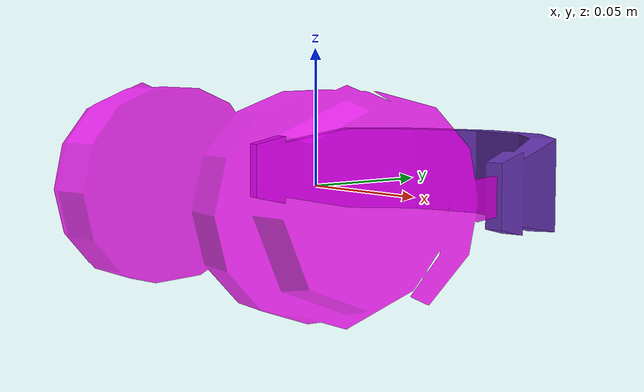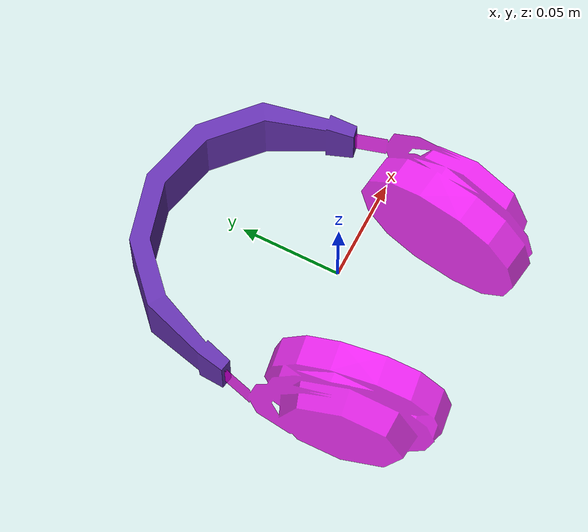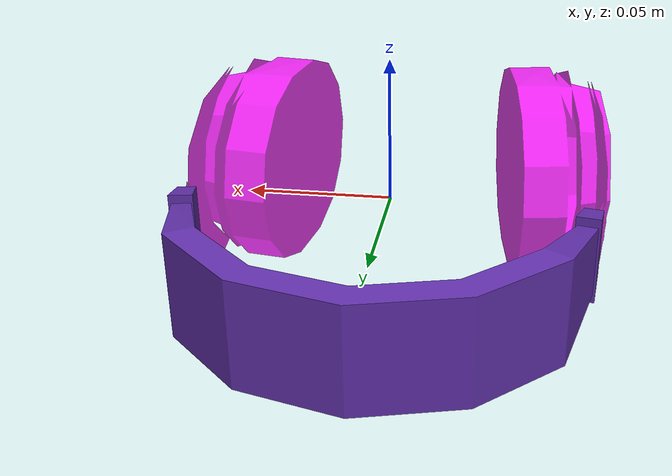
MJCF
<?xml version="1.0" encoding="utf-8"?>
<mujoco model="top_watertight_tiny">

  <asset>

    <mesh file="top_watertight_tiny.obj"/>

    <mesh file="top_watertight_tiny_collision_0.obj"/>

    <mesh file="top_watertight_tiny_collision_1.obj"/>

    <mesh file="top_watertight_tiny_collision_2.obj"/>

    <mesh file="top_watertight_tiny_collision_3.obj"/>

    <mesh file="top_watertight_tiny_collision_4.obj"/>

    <mesh file="top_watertight_tiny_collision_5.obj"/>

    <mesh file="bottom_watertight_tiny.obj"/>

    <mesh file="bottom_watertight_tiny_collision_0.obj"/>

    <mesh file="bottom_watertight_tiny_collision_1.obj"/>

    <mesh file="bottom_watertight_tiny_collision_2.obj"/>

    <mesh file="bottom_watertight_tiny_collision_3.obj"/>

    <mesh file="bottom_watertight_tiny_collision_4.obj"/>

    <mesh file="bottom_watertight_tiny_collision_5.obj"/>

    <mesh file="bottom_watertight_tiny_collision_6.obj"/>

    <mesh file="bottom_watertight_tiny_collision_7.obj"/>

    <mesh file="bottom_watertight_tiny_collision_8.obj"/>

    <mesh file="bottom_watertight_tiny_collision_9.obj"/>

    <mesh file="bottom_watertight_tiny_collision_10.obj"/>

    <mesh file="bottom_watertight_tiny_collision_11.obj"/>

    <mesh file="bottom_watertight_tiny_collision_12.obj"/>

    <mesh file="bottom_watertight_tiny_collision_13.obj"/>

    <mesh file="bottom_watertight_tiny_collision_14.obj"/>

    <mesh file="bottom_watertight_tiny_collision_15.obj"/>

    <mesh file="bottom_watertight_tiny_collision_16.obj"/>

    <mesh file="bottom_watertight_tiny_collision_17.obj"/>

    <mesh file="bottom_watertight_tiny_collision_18.obj"/>

    <mesh file="bottom_watertight_tiny_collision_19.obj"/>

    <mesh file="bottom_watertight_tiny_collision_20.obj"/>

    <mesh file="bottom_watertight_tiny_collision_21.obj"/>

    <mesh file="bottom_watertight_tiny_collision_22.obj"/>

    <mesh file="bottom_watertight_tiny_collision_23.obj"/>

    <mesh file="bottom_watertight_tiny_collision_24.obj"/>

    <mesh file="bottom_watertight_tiny_collision_25.obj"/>

    <mesh file="bottom_watertight_tiny_collision_26.obj"/>

    <mesh file="bottom_watertight_tiny_collision_27.obj"/>

    <mesh file="bottom_watertight_tiny_collision_28.obj"/>

    <mesh file="bottom_watertight_tiny_collision_29.obj"/>

    <mesh file="bottom_watertight_tiny_collision_30.obj"/>

    <mesh file="bottom_watertight_tiny_collision_31.obj"/>

    <mesh file="bottom_watertight_tiny_collision_32.obj"/>

    <mesh file="bottom_watertight_tiny_collision_33.obj"/>

    <mesh file="bottom_watertight_tiny_collision_34.obj"/>

    <mesh file="bottom_watertight_tiny_collision_35.obj"/>

    <mesh file="bottom_watertight_tiny_collision_36.obj"/>

    <mesh file="bottom_watertight_tiny_collision_37.obj"/>

    <mesh file="bottom_watertight_tiny_collision_38.obj"/>

    <mesh file="bottom_watertight_tiny_collision_39.obj"/>

    <mesh file="bottom_watertight_tiny_collision_40.obj"/>

    <mesh file="bottom_watertight_tiny_collision_41.obj"/>

    <mesh file="bottom_watertight_tiny_collision_42.obj"/>

    <mesh file="bottom_watertight_tiny_collision_43.obj"/>

    <mesh file="bottom_watertight_tiny_collision_44.obj"/>

    <mesh file="bottom_watertight_tiny_collision_45.obj"/>

    <mesh file="bottom_watertight_tiny_collision_46.obj"/>

    <mesh file="bottom_watertight_tiny_collision_47.obj"/>

    <mesh file="bottom_watertight_tiny_collision_48.obj"/>

    <mesh file="bottom_watertight_tiny_collision_49.obj"/>

    <mesh file="bottom_watertight_tiny_collision_50.obj"/>

    <mesh file="bottom_watertight_tiny_collision_51.obj"/>

    <mesh file="bottom_watertight_tiny_collision_52.obj"/>

    <mesh file="bottom_watertight_tiny_collision_53.obj"/>

    <mesh file="bottom_watertight_tiny_collision_54.obj"/>

    <mesh file="bottom_watertight_tiny_collision_55.obj"/>

    <mesh file="bottom_watertight_tiny_collision_56.obj"/>

    <mesh file="bottom_watertight_tiny_collision_57.obj"/>

    <mesh file="bottom_watertight_tiny_collision_58.obj"/>

    <mesh file="bottom_watertight_tiny_collision_59.obj"/>

    <mesh file="bottom_watertight_tiny_collision_60.obj"/>

    <mesh file="bottom_watertight_tiny_collision_61.obj"/>

    <mesh file="bottom_watertight_tiny_collision_62.obj"/>

    <mesh file="bottom_watertight_tiny_collision_63.obj"/>

    <mesh file="bottom_watertight_tiny_collision_64.obj"/>

    <mesh file="bottom_watertight_tiny_collision_65.obj"/>

    <mesh file="bottom_watertight_tiny_collision_66.obj"/>

    <mesh file="bottom_watertight_tiny_collision_67.obj"/>

    <mesh file="bottom_watertight_tiny_collision_68.obj"/>

    <mesh file="bottom_watertight_tiny_collision_69.obj"/>

    <mesh file="bottom_watertight_tiny_collision_70.obj"/>

    <mesh file="bottom_watertight_tiny_collision_71.obj"/>

    <mesh file="bottom_watertight_tiny_collision_72.obj"/>

    <mesh file="bottom_watertight_tiny_collision_73.obj"/>

    <mesh file="bottom_watertight_tiny_collision_74.obj"/>

    <mesh file="bottom_watertight_tiny_collision_75.obj"/>

    <mesh file="bottom_watertight_tiny_collision_76.obj"/>

    <mesh file="bottom_watertight_tiny_collision_77.obj"/>

    <mesh file="bottom_watertight_tiny_collision_78.obj"/>

    <mesh file="bottom_watertight_tiny_collision_79.obj"/>

    <mesh file="bottom_watertight_tiny_collision_80.obj"/>

    <mesh file="bottom_watertight_tiny_collision_81.obj"/>

    <mesh file="bottom_watertight_tiny_collision_82.obj"/>

    <mesh file="bottom_watertight_tiny_collision_83.obj"/>

    <mesh file="bottom_watertight_tiny_collision_84.obj"/>

    <mesh file="bottom_watertight_tiny_collision_85.obj"/>

    <mesh file="bottom_watertight_tiny_collision_86.obj"/>

    <mesh file="bottom_watertight_tiny_collision_87.obj"/>

    <mesh file="bottom_watertight_tiny_collision_88.obj"/>

    <mesh file="bottom_watertight_tiny_collision_89.obj"/>

    <mesh file="bottom_watertight_tiny_collision_90.obj"/>

    <mesh file="bottom_watertight_tiny_collision_91.obj"/>

    <mesh file="bottom_watertight_tiny_collision_92.obj"/>

    <mesh file="bottom_watertight_tiny_collision_93.obj"/>

    <mesh file="bottom_watertight_tiny_collision_94.obj"/>

    <mesh file="bottom_watertight_tiny_collision_95.obj"/>

    <mesh file="bottom_watertight_tiny_collision_96.obj"/>

    <mesh file="bottom_watertight_tiny_collision_97.obj"/>

    <mesh file="bottom_watertight_tiny_collision_98.obj"/>

    <mesh file="bottom_watertight_tiny_collision_99.obj"/>

    <mesh file="bottom_watertight_tiny_collision_100.obj"/>

    <mesh file="bottom_watertight_tiny_collision_101.obj"/>

    <mesh file="bottom_watertight_tiny_collision_102.obj"/>

    <mesh file="bottom_watertight_tiny_collision_103.obj"/>

    <mesh file="bottom_watertight_tiny_collision_104.obj"/>

    <mesh file="bottom_watertight_tiny_collision_105.obj"/>

    <mesh file="bottom_watertight_tiny_collision_106.obj"/>

    <mesh file="bottom_watertight_tiny_collision_107.obj"/>

    <mesh file="bottom_watertight_tiny_collision_108.obj"/>

    <mesh file="bottom_watertight_tiny_collision_109.obj"/>

    <mesh file="bottom_watertight_tiny_collision_110.obj"/>

    <mesh file="bottom_watertight_tiny_collision_111.obj"/>

    <mesh file="bottom_watertight_tiny_collision_112.obj"/>

    <mesh file="bottom_watertight_tiny_collision_113.obj"/>

    <mesh file="bottom_watertight_tiny_collision_114.obj"/>

    <mesh file="bottom_watertight_tiny_collision_115.obj"/>

    <mesh file="bottom_watertight_tiny_collision_116.obj"/>

    <mesh file="bottom_watertight_tiny_collision_117.obj"/>

    <mesh file="bottom_watertight_tiny_collision_118.obj"/>

  </asset>

  <worldbody>

    <body name="top_watertight_tiny">

      <freejoint/>

      <geom mesh="top_watertight_tiny" group="2" type="mesh" rgba="0.4 0.2 0.7 1" contype="0" conaffinity="0" solimp="0.90 0.95 0.001" solref="0.02 1.0" density="100" friction="0.95 0.4 0.3"/>

      <geom mesh="top_watertight_tiny_collision_0" rgba="0.9953216689823152 0.5612878978575979 0.4330687415905615 1" group="3" type="mesh" solimp="0.90 0.95 0.001" solref="0.02 1.0" density="100" friction="0.95 0.4 0.3"/>

      <geom mesh="top_watertight_tiny_collision_1" rgba="0.16890570363622637 0.4743819673370072 0.7035933103140639 1" group="3" type="mesh" solimp="0.90 0.95 0.001" solref="0.02 1.0" density="100" friction="0.95 0.4 0.3"/>

      <geom mesh="top_watertight_tiny_collision_2" rgba="0.050984244013493996 0.34365890097586105 0.2049231459749007 1" group="3" type="mesh" solimp="0.90 0.95 0.001" solref="0.02 1.0" density="100" friction="0.95 0.4 0.3"/>

      <geom mesh="top_watertight_tiny_collision_3" rgba="0.5859334586850894 0.43324620159177396 0.7777749571624712 1" group="3" type="mesh" solimp="0.90 0.95 0.001" solref="0.02 1.0" density="100" friction="0.95 0.4 0.3"/>

      <geom mesh="top_watertight_tiny_collision_4" rgba="0.05297137474321467 0.5279955368687115 0.4125917636921278 1" group="3" type="mesh" solimp="0.90 0.95 0.001" solref="0.02 1.0" density="100" friction="0.95 0.4 0.3"/>

      <geom mesh="top_watertight_tiny_collision_5" rgba="0.28188375648977737 0.9775295154427945 2.1983405617764795e-05 1" group="3" type="mesh" solimp="0.90 0.95 0.001" solref="0.02 1.0" density="100" friction="0.95 0.4 0.3"/>

      <body name="bottom_watertight_tiny">

        <geom mesh="bottom_watertight_tiny" group="2" type="mesh" rgba="1 0 1 0.8" contype="0" conaffinity="0" solimp="0.90 0.95 0.001" solref="0.02 1.0" density="100" friction="0.95 0.4 0.3"/>

        <geom mesh="bottom_watertight_tiny_collision_0" rgba="0.25539201174926796 0.7792067627792995 0.4295510790214633 1" group="3" type="mesh" solimp="0.90 0.95 0.001" solref="0.02 1.0" density="100" friction="0.95 0.4 0.3"/>

        <geom mesh="bottom_watertight_tiny_collision_1" rgba="0.04451256020075833 0.29560538469228725 0.4395954780102096 1" group="3" type="mesh" solimp="0.90 0.95 0.001" solref="0.02 1.0" density="100" friction="0.95 0.4 0.3"/>

        <geom mesh="bottom_watertight_tiny_collision_2" rgba="0.2891335623174973 0.5282494574609454 0.24016633511732366 1" group="3" type="mesh" solimp="0.90 0.95 0.001" solref="0.02 1.0" density="100" friction="0.95 0.4 0.3"/>

        <geom mesh="bottom_watertight_tiny_collision_3" rgba="0.5503729312580417 0.2547904474771432 0.06884932173106428 1" group="3" type="mesh" solimp="0.90 0.95 0.001" solref="0.02 1.0" density="100" friction="0.95 0.4 0.3"/>

        <geom mesh="bottom_watertight_tiny_collision_4" rgba="0.5799908127836447 0.9541637603357953 0.24615028252230975 1" group="3" type="mesh" solimp="0.90 0.95 0.001" solref="0.02 1.0" density="100" friction="0.95 0.4 0.3"/>

        <geom mesh="bottom_watertight_tiny_collision_5" rgba="0.11606272672814877 0.43256944273370446 0.5296161238317297 1" group="3" type="mesh" solimp="0.90 0.95 0.001" solref="0.02 1.0" density="100" friction="0.95 0.4 0.3"/>

        <geom mesh="bottom_watertight_tiny_collision_6" rgba="0.8741560948216408 0.07260614400804155 0.25765148047397934 1" group="3" type="mesh" solimp="0.90 0.95 0.001" solref="0.02 1.0" density="100" friction="0.95 0.4 0.3"/>

        <geom mesh="bottom_watertight_tiny_collision_7" rgba="0.07729918252561951 0.7401862419772689 0.9407622546401893 1" group="3" type="mesh" solimp="0.90 0.95 0.001" solref="0.02 1.0" density="100" friction="0.95 0.4 0.3"/>

        <geom mesh="bottom_watertight_tiny_collision_8" rgba="0.2092318226043931 0.8246840343857599 0.9634756348934421 1" group="3" type="mesh" solimp="0.90 0.95 0.001" solref="0.02 1.0" density="100" friction="0.95 0.4 0.3"/>

        <geom mesh="bottom_watertight_tiny_collision_9" rgba="0.18732822250389924 0.6751610833874379 0.9906925948984381 1" group="3" type="mesh" solimp="0.90 0.95 0.001" solref="0.02 1.0" density="100" friction="0.95 0.4 0.3"/>

        <geom mesh="bottom_watertight_tiny_collision_10" rgba="0.3983840127412678 0.2553120594388387 0.8813608061117473 1" group="3" type="mesh" solimp="0.90 0.95 0.001" solref="0.02 1.0" density="100" friction="0.95 0.4 0.3"/>

        <geom mesh="bottom_watertight_tiny_collision_11" rgba="0.807532696070348 0.7061347679224464 0.8181035233287868 1" group="3" type="mesh" solimp="0.90 0.95 0.001" solref="0.02 1.0" density="100" friction="0.95 0.4 0.3"/>

        <geom mesh="bottom_watertight_tiny_collision_12" rgba="0.47488860745033556 0.10606731102801936 0.4933657794920808 1" group="3" type="mesh" solimp="0.90 0.95 0.001" solref="0.02 1.0" density="100" friction="0.95 0.4 0.3"/>

        <geom mesh="bottom_watertight_tiny_collision_13" rgba="0.6326820151155642 0.7741115561829 0.4608216205561544 1" group="3" type="mesh" solimp="0.90 0.95 0.001" solref="0.02 1.0" density="100" friction="0.95 0.4 0.3"/>

        <geom mesh="bottom_watertight_tiny_collision_14" rgba="0.3541363196700067 0.5960844142198681 0.5022495284564557 1" group="3" type="mesh" solimp="0.90 0.95 0.001" solref="0.02 1.0" density="100" friction="0.95 0.4 0.3"/>

        <geom mesh="bottom_watertight_tiny_collision_15" rgba="0.6516494246518133 0.27750664979820405 0.1797517247039958 1" group="3" type="mesh" solimp="0.90 0.95 0.001" solref="0.02 1.0" density="100" friction="0.95 0.4 0.3"/>

        <geom mesh="bottom_watertight_tiny_collision_16" rgba="0.4238545934123765 0.8567989113554815 0.1754716424406081 1" group="3" type="mesh" solimp="0.90 0.95 0.001" solref="0.02 1.0" density="100" friction="0.95 0.4 0.3"/>

        <geom mesh="bottom_watertight_tiny_collision_17" rgba="0.6415505893132066 0.557213918053344 0.6187845237831896 1" group="3" type="mesh" solimp="0.90 0.95 0.001" solref="0.02 1.0" density="100" friction="0.95 0.4 0.3"/>

        <geom mesh="bottom_watertight_tiny_collision_18" rgba="0.4082867497450722 0.8204305612212471 0.396194251146735 1" group="3" type="mesh" solimp="0.90 0.95 0.001" solref="0.02 1.0" density="100" friction="0.95 0.4 0.3"/>

        <geom mesh="bottom_watertight_tiny_collision_19" rgba="0.8808768074626975 0.4963458181255219 0.9927698441147951 1" group="3" type="mesh" solimp="0.90 0.95 0.001" solref="0.02 1.0" density="100" friction="0.95 0.4 0.3"/>

        <geom mesh="bottom_watertight_tiny_collision_20" rgba="0.6769937212291454 0.8048143036647271 0.6007361468485996 1" group="3" type="mesh" solimp="0.90 0.95 0.001" solref="0.02 1.0" density="100" friction="0.95 0.4 0.3"/>

        <geom mesh="bottom_watertight_tiny_collision_21" rgba="0.4478775217246501 0.05963555896370387 0.6331780980167184 1" group="3" type="mesh" solimp="0.90 0.95 0.001" solref="0.02 1.0" density="100" friction="0.95 0.4 0.3"/>

        <geom mesh="bottom_watertight_tiny_collision_22" rgba="0.18758264405921488 0.8867566821950745 0.8369478449985278 1" group="3" type="mesh" solimp="0.90 0.95 0.001" solref="0.02 1.0" density="100" friction="0.95 0.4 0.3"/>

        <geom mesh="bottom_watertight_tiny_collision_23" rgba="0.555365726098492 0.46200686967256277 0.18043261966780166 1" group="3" type="mesh" solimp="0.90 0.95 0.001" solref="0.02 1.0" density="100" friction="0.95 0.4 0.3"/>

        <geom mesh="bottom_watertight_tiny_collision_24" rgba="0.9039182919805874 0.8154112777873733 0.8926821013306817 1" group="3" type="mesh" solimp="0.90 0.95 0.001" solref="0.02 1.0" density="100" friction="0.95 0.4 0.3"/>

        <geom mesh="bottom_watertight_tiny_collision_25" rgba="0.705625333575054 0.39816679664435295 0.1708679189929141 1" group="3" type="mesh" solimp="0.90 0.95 0.001" solref="0.02 1.0" density="100" friction="0.95 0.4 0.3"/>

        <geom mesh="bottom_watertight_tiny_collision_26" rgba="0.509010356010533 0.9067373206493228 0.5867432241386842 1" group="3" type="mesh" solimp="0.90 0.95 0.001" solref="0.02 1.0" density="100" friction="0.95 0.4 0.3"/>

        <geom mesh="bottom_watertight_tiny_collision_27" rgba="0.5981637429050303 0.9849654842117335 0.9343448723796695 1" group="3" type="mesh" solimp="0.90 0.95 0.001" solref="0.02 1.0" density="100" friction="0.95 0.4 0.3"/>

        <geom mesh="bottom_watertight_tiny_collision_28" rgba="0.7688547506557135 0.3850932538167373 0.6791561775176453 1" group="3" type="mesh" solimp="0.90 0.95 0.001" solref="0.02 1.0" density="100" friction="0.95 0.4 0.3"/>

        <geom mesh="bottom_watertight_tiny_collision_29" rgba="0.2763079668620527 0.9171719835544277 0.9036100687006088 1" group="3" type="mesh" solimp="0.90 0.95 0.001" solref="0.02 1.0" density="100" friction="0.95 0.4 0.3"/>

        <geom mesh="bottom_watertight_tiny_collision_30" rgba="0.8237172917822438 0.32230481223706087 0.5178572994404699 1" group="3" type="mesh" solimp="0.90 0.95 0.001" solref="0.02 1.0" density="100" friction="0.95 0.4 0.3"/>

        <geom mesh="bottom_watertight_tiny_collision_31" rgba="0.578601898667193 0.798342012749068 0.23566798760400431 1" group="3" type="mesh" solimp="0.90 0.95 0.001" solref="0.02 1.0" density="100" friction="0.95 0.4 0.3"/>

        <geom mesh="bottom_watertight_tiny_collision_32" rgba="0.389478845485858 0.024947866438014943 0.5064294938097206 1" group="3" type="mesh" solimp="0.90 0.95 0.001" solref="0.02 1.0" density="100" friction="0.95 0.4 0.3"/>

        <geom mesh="bottom_watertight_tiny_collision_33" rgba="0.7751253150352984 0.7167649999437646 0.47277178428787436 1" group="3" type="mesh" solimp="0.90 0.95 0.001" solref="0.02 1.0" density="100" friction="0.95 0.4 0.3"/>

        <geom mesh="bottom_watertight_tiny_collision_34" rgba="0.3717046455834202 0.941257622765259 0.663785963735199 1" group="3" type="mesh" solimp="0.90 0.95 0.001" solref="0.02 1.0" density="100" friction="0.95 0.4 0.3"/>

        <geom mesh="bottom_watertight_tiny_collision_35" rgba="0.14179840625699514 0.7345347588844338 0.5487183337911795 1" group="3" type="mesh" solimp="0.90 0.95 0.001" solref="0.02 1.0" density="100" friction="0.95 0.4 0.3"/>

        <geom mesh="bottom_watertight_tiny_collision_36" rgba="0.4794946055472986 0.4218700203683462 0.8724561007651844 1" group="3" type="mesh" solimp="0.90 0.95 0.001" solref="0.02 1.0" density="100" friction="0.95 0.4 0.3"/>

        <geom mesh="bottom_watertight_tiny_collision_37" rgba="0.2347368078307719 0.13670597668624673 0.321325498876583 1" group="3" type="mesh" solimp="0.90 0.95 0.001" solref="0.02 1.0" density="100" friction="0.95 0.4 0.3"/>

        <geom mesh="bottom_watertight_tiny_collision_38" rgba="0.24390705431938542 0.23913055812901451 0.22555914696427004 1" group="3" type="mesh" solimp="0.90 0.95 0.001" solref="0.02 1.0" density="100" friction="0.95 0.4 0.3"/>

        <geom mesh="bottom_watertight_tiny_collision_39" rgba="0.8598997888383413 0.8277498723496639 0.6422765170020344 1" group="3" type="mesh" solimp="0.90 0.95 0.001" solref="0.02 1.0" density="100" friction="0.95 0.4 0.3"/>

        <geom mesh="bottom_watertight_tiny_collision_40" rgba="0.17335044852503323 0.7559793596280656 0.6483296812815141 1" group="3" type="mesh" solimp="0.90 0.95 0.001" solref="0.02 1.0" density="100" friction="0.95 0.4 0.3"/>

        <geom mesh="bottom_watertight_tiny_collision_41" rgba="0.5270373178531159 0.5166046862450047 0.20571295050535743 1" group="3" type="mesh" solimp="0.90 0.95 0.001" solref="0.02 1.0" density="100" friction="0.95 0.4 0.3"/>

        <geom mesh="bottom_watertight_tiny_collision_42" rgba="0.4448451566498286 0.12014555175735397 0.03995231677584299 1" group="3" type="mesh" solimp="0.90 0.95 0.001" solref="0.02 1.0" density="100" friction="0.95 0.4 0.3"/>

        <geom mesh="bottom_watertight_tiny_collision_43" rgba="0.3600473098196404 0.7100561092302697 0.6980496939600875 1" group="3" type="mesh" solimp="0.90 0.95 0.001" solref="0.02 1.0" density="100" friction="0.95 0.4 0.3"/>

        <geom mesh="bottom_watertight_tiny_collision_44" rgba="0.877053553076447 0.0683280487605642 0.6448055388349101 1" group="3" type="mesh" solimp="0.90 0.95 0.001" solref="0.02 1.0" density="100" friction="0.95 0.4 0.3"/>

        <geom mesh="bottom_watertight_tiny_collision_45" rgba="0.18268825587382242 0.25002370377633 0.5584382853182833 1" group="3" type="mesh" solimp="0.90 0.95 0.001" solref="0.02 1.0" density="100" friction="0.95 0.4 0.3"/>

        <geom mesh="bottom_watertight_tiny_collision_46" rgba="0.8449305775132587 0.5374390860066695 0.21506256284588843 1" group="3" type="mesh" solimp="0.90 0.95 0.001" solref="0.02 1.0" density="100" friction="0.95 0.4 0.3"/>

        <geom mesh="bottom_watertight_tiny_collision_47" rgba="0.7453387534094091 0.2806187528780034 0.028607700358910915 1" group="3" type="mesh" solimp="0.90 0.95 0.001" solref="0.02 1.0" density="100" friction="0.95 0.4 0.3"/>

        <geom mesh="bottom_watertight_tiny_collision_48" rgba="0.8011522910019562 0.318670767057023 0.19271392825325873 1" group="3" type="mesh" solimp="0.90 0.95 0.001" solref="0.02 1.0" density="100" friction="0.95 0.4 0.3"/>

        <geom mesh="bottom_watertight_tiny_collision_49" rgba="0.06694752276538618 0.6282078162265136 0.9706299054648739 1" group="3" type="mesh" solimp="0.90 0.95 0.001" solref="0.02 1.0" density="100" friction="0.95 0.4 0.3"/>

        <geom mesh="bottom_watertight_tiny_collision_50" rgba="0.9944949008704604 0.1303535388261866 0.45296181231947075 1" group="3" type="mesh" solimp="0.90 0.95 0.001" solref="0.02 1.0" density="100" friction="0.95 0.4 0.3"/>

        <geom mesh="bottom_watertight_tiny_collision_51" rgba="0.8504036887398867 0.6062865210211397 0.022313931112444396 1" group="3" type="mesh" solimp="0.90 0.95 0.001" solref="0.02 1.0" density="100" friction="0.95 0.4 0.3"/>

        <geom mesh="bottom_watertight_tiny_collision_52" rgba="0.8722697398513262 0.8141698486709975 0.9475315639269526 1" group="3" type="mesh" solimp="0.90 0.95 0.001" solref="0.02 1.0" density="100" friction="0.95 0.4 0.3"/>

        <geom mesh="bottom_watertight_tiny_collision_53" rgba="0.44707373566046105 0.6568790591657071 0.9438838119572319 1" group="3" type="mesh" solimp="0.90 0.95 0.001" solref="0.02 1.0" density="100" friction="0.95 0.4 0.3"/>

        <geom mesh="bottom_watertight_tiny_collision_54" rgba="0.7817153854767931 0.43536797499220714 0.4323599444954611 1" group="3" type="mesh" solimp="0.90 0.95 0.001" solref="0.02 1.0" density="100" friction="0.95 0.4 0.3"/>

        <geom mesh="bottom_watertight_tiny_collision_55" rgba="0.5635547521825508 0.2697554560026233 0.22465619011222715 1" group="3" type="mesh" solimp="0.90 0.95 0.001" solref="0.02 1.0" density="100" friction="0.95 0.4 0.3"/>

        <geom mesh="bottom_watertight_tiny_collision_56" rgba="0.8609470779862595 0.9729976966406305 0.7069523272108593 1" group="3" type="mesh" solimp="0.90 0.95 0.001" solref="0.02 1.0" density="100" friction="0.95 0.4 0.3"/>

        <geom mesh="bottom_watertight_tiny_collision_57" rgba="0.4579407259895981 0.18906447211894994 0.77323550195869 1" group="3" type="mesh" solimp="0.90 0.95 0.001" solref="0.02 1.0" density="100" friction="0.95 0.4 0.3"/>

        <geom mesh="bottom_watertight_tiny_collision_58" rgba="0.9951228228991946 0.6198299081706234 0.6270287092482341 1" group="3" type="mesh" solimp="0.90 0.95 0.001" solref="0.02 1.0" density="100" friction="0.95 0.4 0.3"/>

        <geom mesh="bottom_watertight_tiny_collision_59" rgba="0.6588537947797022 0.3249991575343132 0.8092307076404905 1" group="3" type="mesh" solimp="0.90 0.95 0.001" solref="0.02 1.0" density="100" friction="0.95 0.4 0.3"/>

        <geom mesh="bottom_watertight_tiny_collision_60" rgba="0.8562084315332905 0.18082763472234809 0.882637381771935 1" group="3" type="mesh" solimp="0.90 0.95 0.001" solref="0.02 1.0" density="100" friction="0.95 0.4 0.3"/>

        <geom mesh="bottom_watertight_tiny_collision_61" rgba="0.8279453306397254 0.7154994162312881 0.5863513830957465 1" group="3" type="mesh" solimp="0.90 0.95 0.001" solref="0.02 1.0" density="100" friction="0.95 0.4 0.3"/>

        <geom mesh="bottom_watertight_tiny_collision_62" rgba="0.9913234257206398 0.3558600926691524 0.8596090734587126 1" group="3" type="mesh" solimp="0.90 0.95 0.001" solref="0.02 1.0" density="100" friction="0.95 0.4 0.3"/>

        <geom mesh="bottom_watertight_tiny_collision_63" rgba="0.21219419551948904 0.5356801674353753 0.8306038095293288 1" group="3" type="mesh" solimp="0.90 0.95 0.001" solref="0.02 1.0" density="100" friction="0.95 0.4 0.3"/>

        <geom mesh="bottom_watertight_tiny_collision_64" rgba="0.3175346769534507 0.4835910430492667 0.24736089124737648 1" group="3" type="mesh" solimp="0.90 0.95 0.001" solref="0.02 1.0" density="100" friction="0.95 0.4 0.3"/>

        <geom mesh="bottom_watertight_tiny_collision_65" rgba="0.13248684930755572 0.6335912871093193 0.26759198050768673 1" group="3" type="mesh" solimp="0.90 0.95 0.001" solref="0.02 1.0" density="100" friction="0.95 0.4 0.3"/>

        <geom mesh="bottom_watertight_tiny_collision_66" rgba="0.740640395877184 0.7380428512636554 0.9790795990112797 1" group="3" type="mesh" solimp="0.90 0.95 0.001" solref="0.02 1.0" density="100" friction="0.95 0.4 0.3"/>

        <geom mesh="bottom_watertight_tiny_collision_67" rgba="0.846537395726656 0.4466319271825565 0.8297111495870239 1" group="3" type="mesh" solimp="0.90 0.95 0.001" solref="0.02 1.0" density="100" friction="0.95 0.4 0.3"/>

        <geom mesh="bottom_watertight_tiny_collision_68" rgba="0.43020951860510104 0.6946016826739023 0.7093889523424627 1" group="3" type="mesh" solimp="0.90 0.95 0.001" solref="0.02 1.0" density="100" friction="0.95 0.4 0.3"/>

        <geom mesh="bottom_watertight_tiny_collision_69" rgba="0.8706239581197898 0.5754912025090635 0.18580794891703378 1" group="3" type="mesh" solimp="0.90 0.95 0.001" solref="0.02 1.0" density="100" friction="0.95 0.4 0.3"/>

        <geom mesh="bottom_watertight_tiny_collision_70" rgba="0.3019786551297533 0.38630512763466596 0.5289489274238531 1" group="3" type="mesh" solimp="0.90 0.95 0.001" solref="0.02 1.0" density="100" friction="0.95 0.4 0.3"/>

        <geom mesh="bottom_watertight_tiny_collision_71" rgba="0.9853454667594075 0.0236897363378753 0.4149860951079597 1" group="3" type="mesh" solimp="0.90 0.95 0.001" solref="0.02 1.0" density="100" friction="0.95 0.4 0.3"/>

        <geom mesh="bottom_watertight_tiny_collision_72" rgba="0.5635006258410272 0.7317462624076266 0.7864738978458357 1" group="3" type="mesh" solimp="0.90 0.95 0.001" solref="0.02 1.0" density="100" friction="0.95 0.4 0.3"/>

        <geom mesh="bottom_watertight_tiny_collision_73" rgba="0.09174171229190164 0.45397047667680857 0.4284315276990931 1" group="3" type="mesh" solimp="0.90 0.95 0.001" solref="0.02 1.0" density="100" friction="0.95 0.4 0.3"/>

        <geom mesh="bottom_watertight_tiny_collision_74" rgba="0.6974016466801136 0.12447909042762628 0.9001718345801988 1" group="3" type="mesh" solimp="0.90 0.95 0.001" solref="0.02 1.0" density="100" friction="0.95 0.4 0.3"/>

        <geom mesh="bottom_watertight_tiny_collision_75" rgba="0.6632473216174563 0.0389690975779694 0.23052671457782592 1" group="3" type="mesh" solimp="0.90 0.95 0.001" solref="0.02 1.0" density="100" friction="0.95 0.4 0.3"/>

        <geom mesh="bottom_watertight_tiny_collision_76" rgba="0.01725016246907518 0.3459449466726753 0.5489150269603557 1" group="3" type="mesh" solimp="0.90 0.95 0.001" solref="0.02 1.0" density="100" friction="0.95 0.4 0.3"/>

        <geom mesh="bottom_watertight_tiny_collision_77" rgba="0.7935308637504569 0.06223066780037789 0.6142920062193827 1" group="3" type="mesh" solimp="0.90 0.95 0.001" solref="0.02 1.0" density="100" friction="0.95 0.4 0.3"/>

        <geom mesh="bottom_watertight_tiny_collision_78" rgba="0.7871354195018181 0.8348448439630054 0.23811509525940866 1" group="3" type="mesh" solimp="0.90 0.95 0.001" solref="0.02 1.0" density="100" friction="0.95 0.4 0.3"/>

        <geom mesh="bottom_watertight_tiny_collision_79" rgba="0.5153996884251869 0.805945629614462 0.3350394282534579 1" group="3" type="mesh" solimp="0.90 0.95 0.001" solref="0.02 1.0" density="100" friction="0.95 0.4 0.3"/>

        <geom mesh="bottom_watertight_tiny_collision_80" rgba="0.40332124360300037 0.23560391055072905 0.3052315053762329 1" group="3" type="mesh" solimp="0.90 0.95 0.001" solref="0.02 1.0" density="100" friction="0.95 0.4 0.3"/>

        <geom mesh="bottom_watertight_tiny_collision_81" rgba="0.7800038048966069 0.6090730222564502 0.22689012886778293 1" group="3" type="mesh" solimp="0.90 0.95 0.001" solref="0.02 1.0" density="100" friction="0.95 0.4 0.3"/>

        <geom mesh="bottom_watertight_tiny_collision_82" rgba="0.504046707467482 0.7437809490797367 0.8569907624300508 1" group="3" type="mesh" solimp="0.90 0.95 0.001" solref="0.02 1.0" density="100" friction="0.95 0.4 0.3"/>

        <geom mesh="bottom_watertight_tiny_collision_83" rgba="0.2526751995446559 0.9292516731991578 0.5462774308536433 1" group="3" type="mesh" solimp="0.90 0.95 0.001" solref="0.02 1.0" density="100" friction="0.95 0.4 0.3"/>

        <geom mesh="bottom_watertight_tiny_collision_84" rgba="0.6092266594692495 0.3276444685764397 0.9702701566241754 1" group="3" type="mesh" solimp="0.90 0.95 0.001" solref="0.02 1.0" density="100" friction="0.95 0.4 0.3"/>

        <geom mesh="bottom_watertight_tiny_collision_85" rgba="0.009823845665441255 0.8118683699392911 0.7245266587296244 1" group="3" type="mesh" solimp="0.90 0.95 0.001" solref="0.02 1.0" density="100" friction="0.95 0.4 0.3"/>

        <geom mesh="bottom_watertight_tiny_collision_86" rgba="0.09373796532838485 0.47119186553224945 0.30631726447049945 1" group="3" type="mesh" solimp="0.90 0.95 0.001" solref="0.02 1.0" density="100" friction="0.95 0.4 0.3"/>

        <geom mesh="bottom_watertight_tiny_collision_87" rgba="0.08759452898657427 0.586848927047926 0.34327162796581534 1" group="3" type="mesh" solimp="0.90 0.95 0.001" solref="0.02 1.0" density="100" friction="0.95 0.4 0.3"/>

        <geom mesh="bottom_watertight_tiny_collision_88" rgba="0.9700087588212235 0.5134328018701975 0.9298034288939059 1" group="3" type="mesh" solimp="0.90 0.95 0.001" solref="0.02 1.0" density="100" friction="0.95 0.4 0.3"/>

        <geom mesh="bottom_watertight_tiny_collision_89" rgba="0.8775152231485892 0.7513333864897789 0.7655934437225167 1" group="3" type="mesh" solimp="0.90 0.95 0.001" solref="0.02 1.0" density="100" friction="0.95 0.4 0.3"/>

        <geom mesh="bottom_watertight_tiny_collision_90" rgba="0.13037763654029078 0.7560292279783966 0.8645460233800355 1" group="3" type="mesh" solimp="0.90 0.95 0.001" solref="0.02 1.0" density="100" friction="0.95 0.4 0.3"/>

        <geom mesh="bottom_watertight_tiny_collision_91" rgba="0.020782299635049073 0.28994085686246596 0.6041389727720076 1" group="3" type="mesh" solimp="0.90 0.95 0.001" solref="0.02 1.0" density="100" friction="0.95 0.4 0.3"/>

        <geom mesh="bottom_watertight_tiny_collision_92" rgba="0.27825787805491653 0.40662085298015715 0.7083961196746144 1" group="3" type="mesh" solimp="0.90 0.95 0.001" solref="0.02 1.0" density="100" friction="0.95 0.4 0.3"/>

        <geom mesh="bottom_watertight_tiny_collision_93" rgba="0.9187345299212932 0.2662661061032834 0.7539562720520865 1" group="3" type="mesh" solimp="0.90 0.95 0.001" solref="0.02 1.0" density="100" friction="0.95 0.4 0.3"/>

        <geom mesh="bottom_watertight_tiny_collision_94" rgba="0.2960958042490768 0.21137251795429035 0.036006654443637265 1" group="3" type="mesh" solimp="0.90 0.95 0.001" solref="0.02 1.0" density="100" friction="0.95 0.4 0.3"/>

        <geom mesh="bottom_watertight_tiny_collision_95" rgba="0.5568754926392735 0.6477591963000862 0.720160713503593 1" group="3" type="mesh" solimp="0.90 0.95 0.001" solref="0.02 1.0" density="100" friction="0.95 0.4 0.3"/>

        <geom mesh="bottom_watertight_tiny_collision_96" rgba="0.42855103362277935 0.7702312409942877 0.6860500866342129 1" group="3" type="mesh" solimp="0.90 0.95 0.001" solref="0.02 1.0" density="100" friction="0.95 0.4 0.3"/>

        <geom mesh="bottom_watertight_tiny_collision_97" rgba="0.5640430020758621 0.4492955109384741 0.1788111725980257 1" group="3" type="mesh" solimp="0.90 0.95 0.001" solref="0.02 1.0" density="100" friction="0.95 0.4 0.3"/>

        <geom mesh="bottom_watertight_tiny_collision_98" rgba="0.8372051885800483 0.11775846551078628 0.3568758984041337 1" group="3" type="mesh" solimp="0.90 0.95 0.001" solref="0.02 1.0" density="100" friction="0.95 0.4 0.3"/>

        <geom mesh="bottom_watertight_tiny_collision_99" rgba="0.9548062673553789 0.2059338535901154 0.9286405459256972 1" group="3" type="mesh" solimp="0.90 0.95 0.001" solref="0.02 1.0" density="100" friction="0.95 0.4 0.3"/>

        <geom mesh="bottom_watertight_tiny_collision_100" rgba="0.7211940734658503 0.6337335218399879 0.3802315465065087 1" group="3" type="mesh" solimp="0.90 0.95 0.001" solref="0.02 1.0" density="100" friction="0.95 0.4 0.3"/>

        <geom mesh="bottom_watertight_tiny_collision_101" rgba="0.367707483318677 0.2502412462270728 0.952748711379496 1" group="3" type="mesh" solimp="0.90 0.95 0.001" solref="0.02 1.0" density="100" friction="0.95 0.4 0.3"/>

        <geom mesh="bottom_watertight_tiny_collision_102" rgba="0.2590783768417554 0.5901827337497925 0.7237705638606193 1" group="3" type="mesh" solimp="0.90 0.95 0.001" solref="0.02 1.0" density="100" friction="0.95 0.4 0.3"/>

        <geom mesh="bottom_watertight_tiny_collision_103" rgba="0.8528128071580106 0.9302274534140467 0.381257234442405 1" group="3" type="mesh" solimp="0.90 0.95 0.001" solref="0.02 1.0" density="100" friction="0.95 0.4 0.3"/>

        <geom mesh="bottom_watertight_tiny_collision_104" rgba="0.4527608789551142 0.93675933453816 0.7736346142353282 1" group="3" type="mesh" solimp="0.90 0.95 0.001" solref="0.02 1.0" density="100" friction="0.95 0.4 0.3"/>

        <geom mesh="bottom_watertight_tiny_collision_105" rgba="0.05658436167180447 0.2086920642006438 0.7628698883915659 1" group="3" type="mesh" solimp="0.90 0.95 0.001" solref="0.02 1.0" density="100" friction="0.95 0.4 0.3"/>

        <geom mesh="bottom_watertight_tiny_collision_106" rgba="0.005498601564797312 0.5112880495310135 0.5950801047500086 1" group="3" type="mesh" solimp="0.90 0.95 0.001" solref="0.02 1.0" density="100" friction="0.95 0.4 0.3"/>

        <geom mesh="bottom_watertight_tiny_collision_107" rgba="0.8355251725134072 0.6280608059592615 0.6955999802000554 1" group="3" type="mesh" solimp="0.90 0.95 0.001" solref="0.02 1.0" density="100" friction="0.95 0.4 0.3"/>

        <geom mesh="bottom_watertight_tiny_collision_108" rgba="0.3313546781916935 0.6071755540534983 0.47264173707450685 1" group="3" type="mesh" solimp="0.90 0.95 0.001" solref="0.02 1.0" density="100" friction="0.95 0.4 0.3"/>

        <geom mesh="bottom_watertight_tiny_collision_109" rgba="0.5069061476884082 0.10474119337510834 0.20452825626387539 1" group="3" type="mesh" solimp="0.90 0.95 0.001" solref="0.02 1.0" density="100" friction="0.95 0.4 0.3"/>

        <geom mesh="bottom_watertight_tiny_collision_110" rgba="0.015368778929711002 0.5572507103582918 0.9070780009666295 1" group="3" type="mesh" solimp="0.90 0.95 0.001" solref="0.02 1.0" density="100" friction="0.95 0.4 0.3"/>

        <geom mesh="bottom_watertight_tiny_collision_111" rgba="0.3389375508973429 0.5298745756889588 0.8197049505785156 1" group="3" type="mesh" solimp="0.90 0.95 0.001" solref="0.02 1.0" density="100" friction="0.95 0.4 0.3"/>

        <geom mesh="bottom_watertight_tiny_collision_112" rgba="0.11549566494044516 0.3486537008550421 0.9604242600737063 1" group="3" type="mesh" solimp="0.90 0.95 0.001" solref="0.02 1.0" density="100" friction="0.95 0.4 0.3"/>

        <geom mesh="bottom_watertight_tiny_collision_113" rgba="0.8260459388136068 0.19059012702824207 0.40178497892177045 1" group="3" type="mesh" solimp="0.90 0.95 0.001" solref="0.02 1.0" density="100" friction="0.95 0.4 0.3"/>

        <geom mesh="bottom_watertight_tiny_collision_114" rgba="0.05860532365742244 0.32815370694297363 0.003957765374426381 1" group="3" type="mesh" solimp="0.90 0.95 0.001" solref="0.02 1.0" density="100" friction="0.95 0.4 0.3"/>

        <geom mesh="bottom_watertight_tiny_collision_115" rgba="0.021531191325934063 0.7436654798542357 0.7925874591235577 1" group="3" type="mesh" solimp="0.90 0.95 0.001" solref="0.02 1.0" density="100" friction="0.95 0.4 0.3"/>

        <geom mesh="bottom_watertight_tiny_collision_116" rgba="0.22541403795480142 0.8776426153604187 0.5191458632380866 1" group="3" type="mesh" solimp="0.90 0.95 0.001" solref="0.02 1.0" density="100" friction="0.95 0.4 0.3"/>

        <geom mesh="bottom_watertight_tiny_collision_117" rgba="0.754773964896785 0.3186008058694262 0.5655957768075458 1" group="3" type="mesh" solimp="0.90 0.95 0.001" solref="0.02 1.0" density="100" friction="0.95 0.4 0.3"/>

        <geom mesh="bottom_watertight_tiny_collision_118" rgba="0.6394260900151699 0.5192384533091572 0.9621938599200769 1" group="3" type="mesh" solimp="0.90 0.95 0.001" solref="0.02 1.0" density="100" friction="0.95 0.4 0.3"/>

        <site name="bottom_watertight_tiny_touch_site" pos="0 0 0" size="0.2" rgba="1 0 0 0." type="sphere"/>
      </body>

      <site name="top_watertight_tiny_touch_site" pos="0 0 0" size="0.2" rgba="1 0 0 0." type="sphere"/>
    </body>

  </worldbody>

  <sensor>
    <touch name="top_watertight_tiny_touch" site="top_watertight_tiny_touch_site"/>
    <touch name="bottom_watertight_tiny_touch" site="bottom_watertight_tiny_touch_site"/>
  </sensor>
</mujoco>
